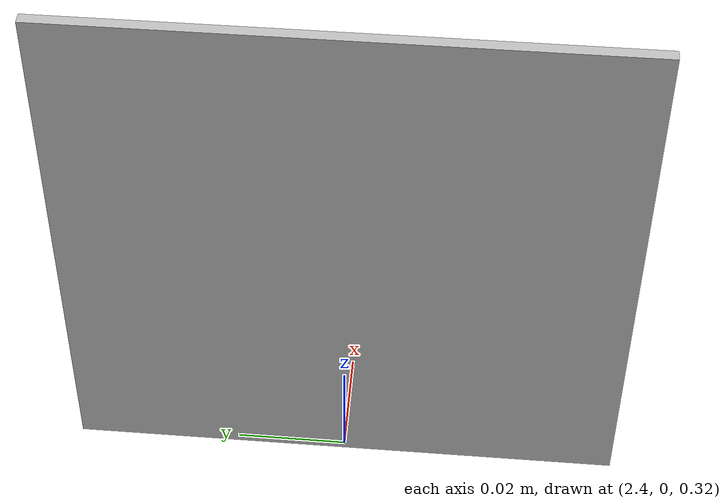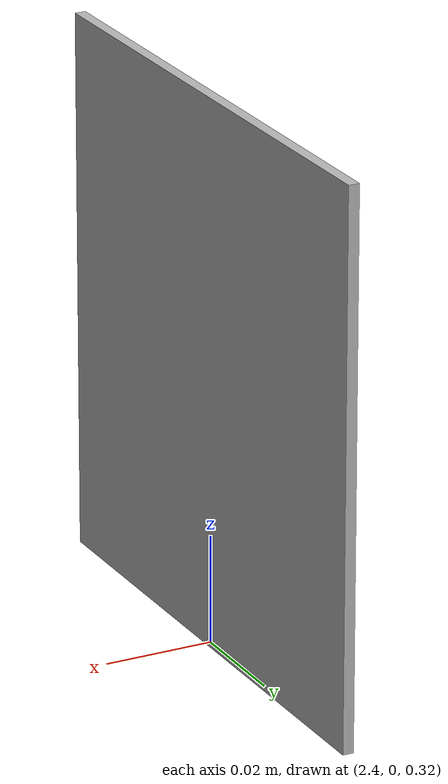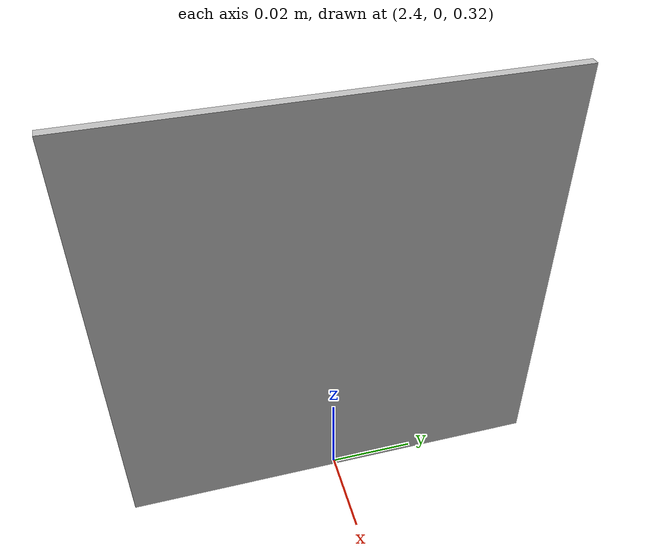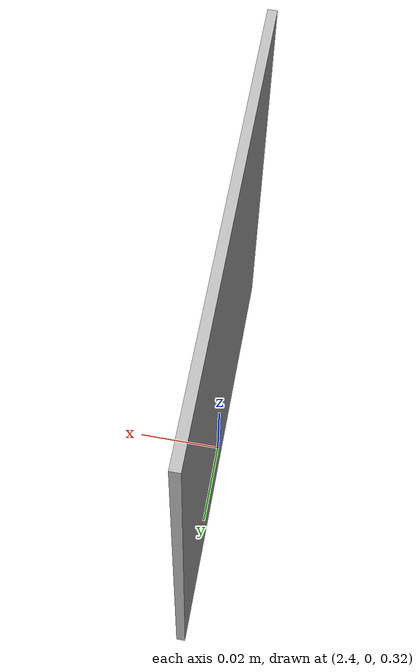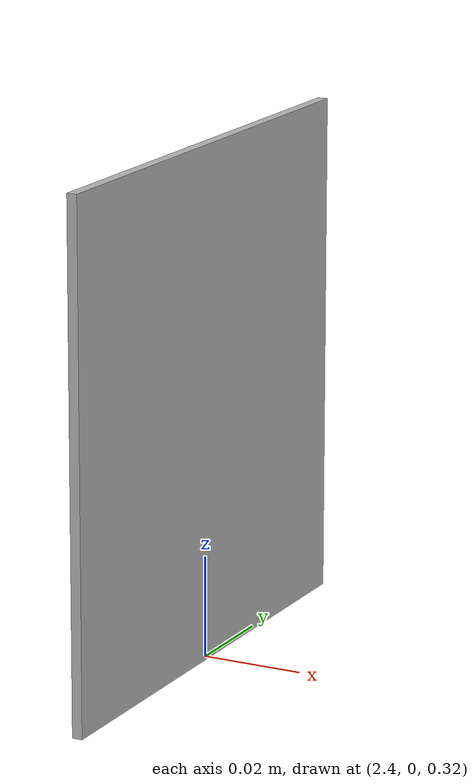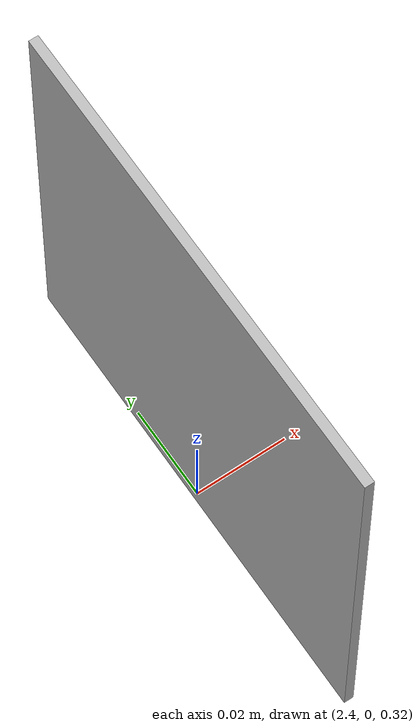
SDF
<?xml version="1.0" ?>
<sdf version="1.4">
  <world name="default">
    <!-- A global light source -->
    <include>
      <uri>model://sun</uri>
    </include>
    <!-- A ground plane -->
    <include>
      <uri>model://ground_plane</uri>
    </include>
    <!-- Own physics settings to speed up simulation -->
    <physics type='ode'>
      <max_step_size>0.01</max_step_size>
      <real_time_factor>1</real_time_factor>
      <real_time_update_rate>100</real_time_update_rate>
      <gravity>0 0 -9.8</gravity>
    </physics>

    <model name='Marker1'>
      <static>1</static>
      <link name='link'>
        <visual name='visual'>
          <geometry>
            <mesh>
              <uri>model://marker1/meshes/Marker1.dae</uri>
              <scale>0.2 0.2 0.2</scale>
            </mesh>
          </geometry>
        </visual>
        <self_collide>0</self_collide>
        <kinematic>0</kinematic>
      </link>
      <pose frame=''>2.4 0 0.32 0 0 0</pose>
    </model>
  </world>
</sdf>
